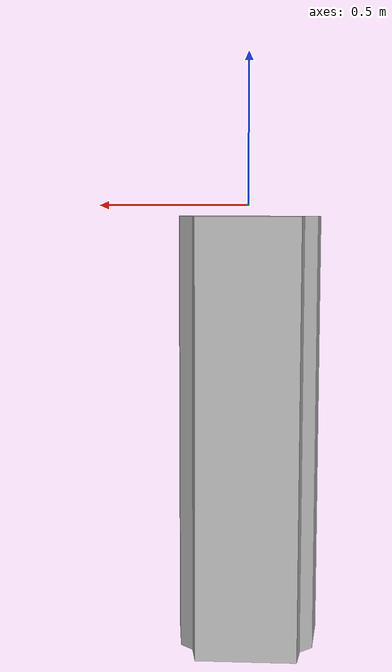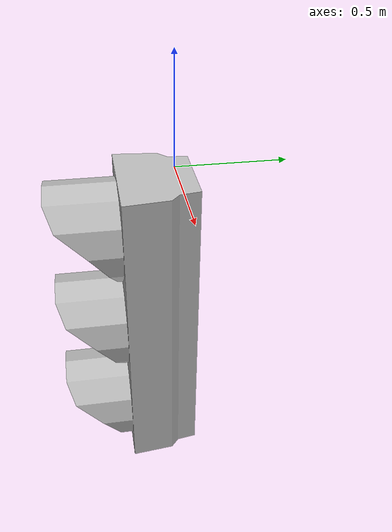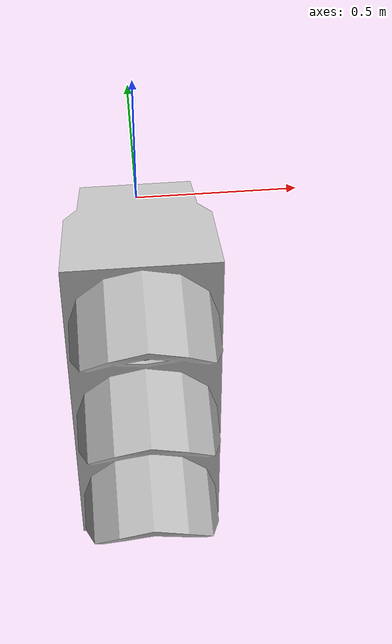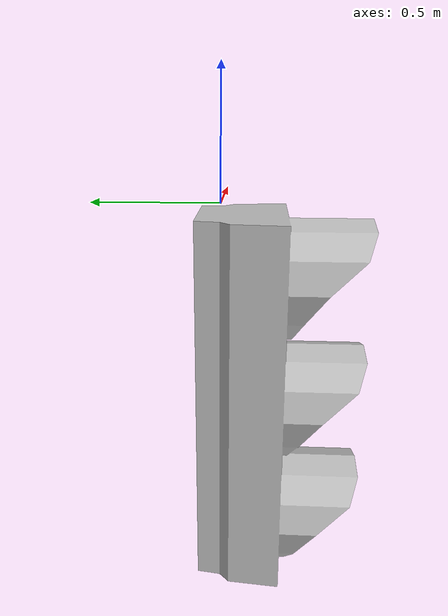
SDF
<?xml version="1.0" ?>
<sdf version="1.6">
  <model name="stoplight_b">

    <static>true</static>

    <link name="link">

      <collision name="collision">
        <geometry>
          <mesh>
            <uri>model://models/stoplights/stoplight_b/meshes/stoplight.obj</uri>
            <scale>0.02 0.02 0.02</scale>
          </mesh>
        </geometry>
      </collision>

      <visual name="frame">
        <geometry>
          <mesh>
            <uri>model://models/stoplights/stoplight_b/meshes/stoplight.obj</uri>
            <scale>0.02 0.02 0.02</scale>
          </mesh>
        </geometry>
      </visual>

      <visual name="red_b">
        <pose>-0.002246 -0.164502 -0.295028 0 0 0</pose>
        <geometry>
          <sphere>
            <radius>0.2024</radius>
          </sphere>
        </geometry>
        <material>
          <script>
            <uri>model://models/stoplights/stoplight_b/materials/scripts/</uri>
            <uri>model://models/stoplights/stoplight_b/materials/textures/</uri>
            <name>StopLight/Light</name>
          </script>
          <ambient>1 0 0 1</ambient>
          <specular>1 0 0 1</specular>
          <!-- Turn a light on by uncommenting emissive -->
        </material>
      </visual>

      <visual name="yellow_b">
        <pose>-0.002246 -0.164502 -0.804 0 0 0</pose>
        <geometry>
          <sphere>
            <radius>0.2024</radius>
          </sphere>
        </geometry>
        <material>
          <script>
            <uri>model://models/stoplights/stoplight_b/materials/scripts/</uri>
            <uri>model://models/stoplights/stoplight_b/materials/textures/</uri>
            <name>StopLight/Light</name>
          </script>
          <ambient>1 1 0 1</ambient>
          <specular>1 1 0 1</specular>
        </material>
      </visual>

      <visual name="green_b">
        <pose>-0.002246 -0.164502 -1.31 0 0 0</pose>
        <geometry>
          <sphere>
            <radius>0.2024</radius>
          </sphere>
        </geometry>
        <material>
          <script>
            <uri>model://models/stoplights/stoplight_b/materials/scripts/</uri>
            <uri>model://models/stoplights/stoplight_b/materials/textures/</uri>
            <name>StopLight/Light</name>
          </script>
          <ambient>0 1 0 1</ambient>
          <specular>0 1 0 1</specular>
        </material>
      </visual>

    </link>
  </model>
</sdf>
